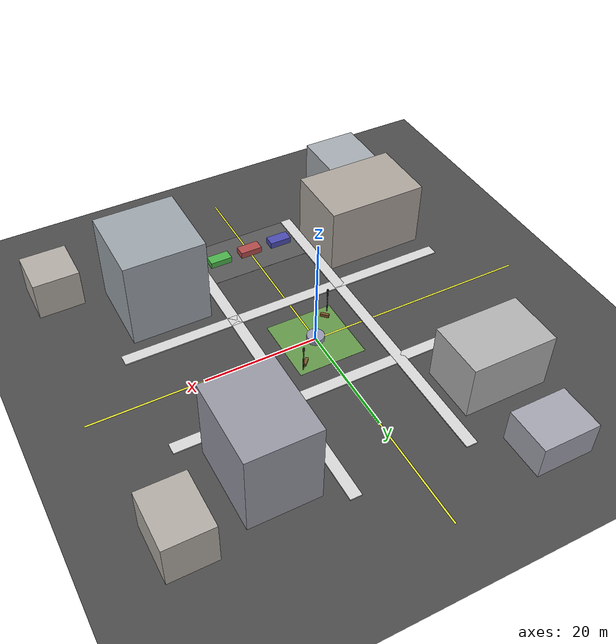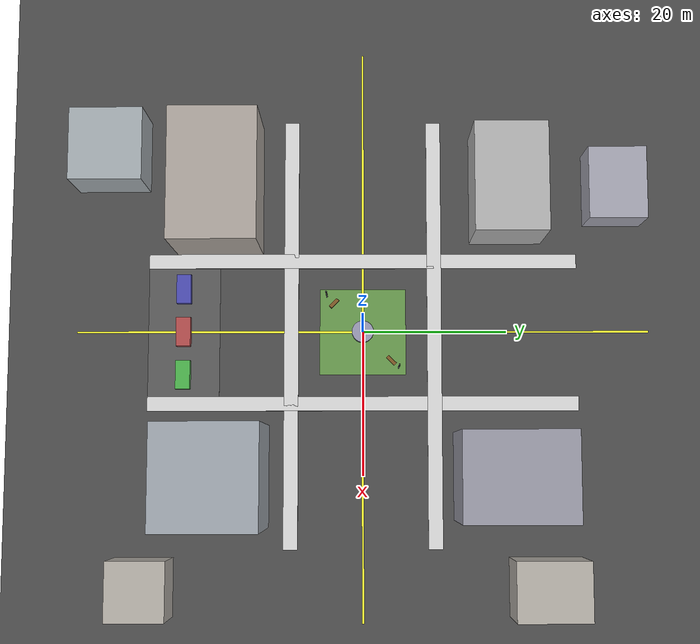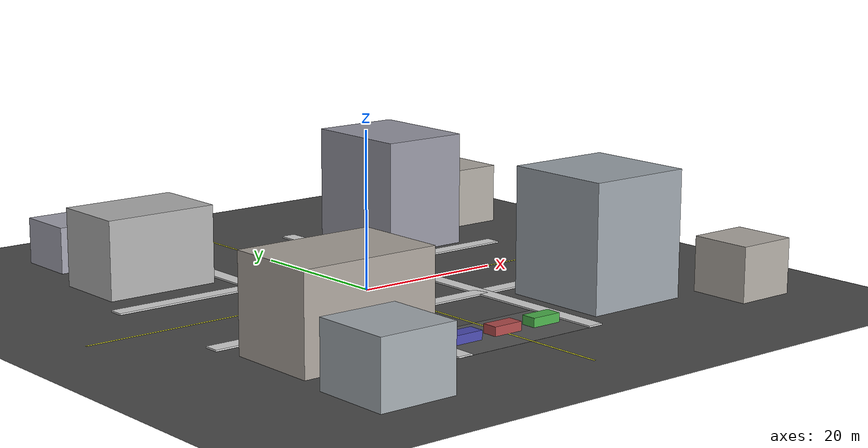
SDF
<?xml version="1.0"?>
<sdf version="1.8">
  <world name="leo_urban">

    <!-- ── Physics ─────────────────────────────────────────────────── -->
    <physics name="1ms" type="ignored">
      <max_step_size>0.001</max_step_size>
      <real_time_factor>1.0</real_time_factor>
    </physics>

    <!-- ── Plugins ──────────────────────────────────────────────────── -->
    <plugin filename="ignition-gazebo-physics-system"
            name="ignition::gazebo::systems::Physics"/>
    <plugin filename="ignition-gazebo-sensors-system"
            name="ignition::gazebo::systems::Sensors">
      <render_engine>ogre2</render_engine>
    </plugin>
    <plugin filename="ignition-gazebo-scene-broadcaster-system"
            name="ignition::gazebo::systems::SceneBroadcaster"/>
    <plugin filename="ignition-gazebo-user-commands-system"
            name="ignition::gazebo::systems::UserCommands"/>
    <plugin filename="gz-sim-imu-system"
            name="gz::sim::systems::Imu"/>
    <plugin filename="ignition-gazebo-navsat-system"
            name="ignition::gazebo::systems::NavSat"/>

    <!-- ── GPS datum: Ankara ─────────────────────────────────────────── -->
    <spherical_coordinates>
      <surface_model>EARTH_WGS84</surface_model>
      <world_frame_orientation>ENU</world_frame_orientation>
      <latitude_deg>39.925018</latitude_deg>
      <longitude_deg>32.836956</longitude_deg>
      <elevation>890</elevation>
      <heading_deg>0</heading_deg>
    </spherical_coordinates>

    <!-- ── Lighting ─────────────────────────────────────────────────── -->
    <light name="sun" type="directional">
      <cast_shadows>true</cast_shadows>
      <pose>0 0 15 0 0 0</pose>
      <diffuse>0.9 0.9 0.9 1</diffuse>
      <specular>0.3 0.3 0.3 1</specular>
      <attenuation>
        <range>1000</range>
        <constant>0.9</constant>
        <linear>0.01</linear>
        <quadratic>0.001</quadratic>
      </attenuation>
      <direction>-0.5 0.1 -0.9</direction>
    </light>

    <!-- ── Ground plane (asphalt) ───────────────────────────────────── -->
    <model name="ground_plane">
      <static>true</static>
      <link name="link">
        <collision name="collision">
          <geometry>
            <plane>
              <normal>0 0 1</normal>
              <size>200 200</size>
            </plane>
          </geometry>
          <surface>
            <friction>
              <ode><mu>0.8</mu><mu2>0.8</mu2></ode>
            </friction>
          </surface>
        </collision>
        <visual name="visual">
          <geometry>
            <plane>
              <normal>0 0 1</normal>
              <size>200 200</size>
            </plane>
          </geometry>
          <material>
            <!-- Dark asphalt -->
            <ambient>0.2 0.2 0.2 1</ambient>
            <diffuse>0.3 0.3 0.3 1</diffuse>
            <specular>0.1 0.1 0.1 1</specular>
          </material>
        </visual>
      </link>
    </model>

    <!-- ════════════════════════════════════════════════════════════════
         BUILDINGS — City blocks
         ════════════════════════════════════════════════════════════════ -->

    <!-- Block A — NW corner -->
    <model name="building_a1">
      <static>true</static>
      <pose>-20 20 5 0 0 0</pose>
      <link name="link">
        <collision name="c">
          <geometry><box><size>15 10 10</size></box></geometry>
        </collision>
        <visual name="v">
          <geometry><box><size>15 10 10</size></box></geometry>
          <material><ambient>0.6 0.6 0.6 1</ambient><diffuse>0.7 0.7 0.7 1</diffuse></material>
        </visual>
      </link>
    </model>

    <model name="building_a2">
      <static>true</static>
      <pose>-20 35 3 0 0 0</pose>
      <link name="link">
        <collision name="c">
          <geometry><box><size>10 8 6</size></box></geometry>
        </collision>
        <visual name="v">
          <geometry><box><size>10 8 6</size></box></geometry>
          <material><ambient>0.55 0.55 0.6 1</ambient><diffuse>0.65 0.65 0.7 1</diffuse></material>
        </visual>
      </link>
    </model>

    <!-- Block B — NE corner -->
    <model name="building_b1">
      <static>true</static>
      <pose>20 20 7.5 0 0 0</pose>
      <link name="link">
        <collision name="c">
          <geometry><box><size>12 15 15</size></box></geometry>
        </collision>
        <visual name="v">
          <geometry><box><size>12 15 15</size></box></geometry>
          <material><ambient>0.5 0.5 0.55 1</ambient><diffuse>0.6 0.6 0.65 1</diffuse></material>
        </visual>
      </link>
    </model>

    <model name="building_b2">
      <static>true</static>
      <pose>35 25 4 0 0 0</pose>
      <link name="link">
        <collision name="c">
          <geometry><box><size>8 10 8</size></box></geometry>
        </collision>
        <visual name="v">
          <geometry><box><size>8 10 8</size></box></geometry>
          <material><ambient>0.6 0.58 0.55 1</ambient><diffuse>0.7 0.68 0.65 1</diffuse></material>
        </visual>
      </link>
    </model>

    <!-- Block C — SW corner -->
    <model name="building_c1">
      <static>true</static>
      <pose>-20 -20 6 0 0 0</pose>
      <link name="link">
        <collision name="c">
          <geometry><box><size>18 12 12</size></box></geometry>
        </collision>
        <visual name="v">
          <geometry><box><size>18 12 12</size></box></geometry>
          <material><ambient>0.58 0.55 0.52 1</ambient><diffuse>0.68 0.65 0.62 1</diffuse></material>
        </visual>
      </link>
    </model>

    <model name="building_c2">
      <static>true</static>
      <pose>-25 -35 4 0 0 0</pose>
      <link name="link">
        <collision name="c">
          <geometry><box><size>10 10 8</size></box></geometry>
        </collision>
        <visual name="v">
          <geometry><box><size>10 10 8</size></box></geometry>
          <material><ambient>0.55 0.58 0.6 1</ambient><diffuse>0.65 0.68 0.7 1</diffuse></material>
        </visual>
      </link>
    </model>

    <!-- Block D — SE corner -->
    <model name="building_d1">
      <static>true</static>
      <pose>20 -20 8 0 0 0</pose>
      <link name="link">
        <collision name="c">
          <geometry><box><size>14 14 16</size></box></geometry>
        </collision>
        <visual name="v">
          <geometry><box><size>14 14 16</size></box></geometry>
          <material><ambient>0.52 0.55 0.58 1</ambient><diffuse>0.62 0.65 0.68 1</diffuse></material>
        </visual>
      </link>
    </model>

    <model name="building_d2">
      <static>true</static>
      <pose>35 -30 3.5 0 0 0</pose>
      <link name="link">
        <collision name="c">
          <geometry><box><size>8 8 7</size></box></geometry>
        </collision>
        <visual name="v">
          <geometry><box><size>8 8 7</size></box></geometry>
          <material><ambient>0.6 0.58 0.55 1</ambient><diffuse>0.7 0.68 0.65 1</diffuse></material>
        </visual>
      </link>
    </model>

    <!-- ════════════════════════════════════════════════════════════════
         ROAD MARKINGS — Lane dividers (visual only)
         ════════════════════════════════════════════════════════════════ -->

    <!-- Main road N-S (x=0) -->
    <model name="road_ns_center">
      <static>true</static>
      <pose>0 0 0.02 0 0 0</pose>
      <link name="link">
        <visual name="v">
          <geometry><plane><normal>0 0 1</normal><size>0.3 80</size></plane></geometry>
          <material><ambient>0.9 0.9 0.1 1</ambient><diffuse>1.0 1.0 0.2 1</diffuse></material>
        </visual>
      </link>
    </model>

    <!-- Main road E-W (y=0) -->
    <model name="road_ew_center">
      <static>true</static>
      <pose>0 0 0.02 0 0 0</pose>
      <link name="link">
        <visual name="v">
          <geometry><plane><normal>0 0 1</normal><size>80 0.3</size></plane></geometry>
          <material><ambient>0.9 0.9 0.1 1</ambient><diffuse>1.0 1.0 0.2 1</diffuse></material>
        </visual>
      </link>
    </model>

    <!-- ════════════════════════════════════════════════════════════════
         SIDEWALKS — Raised platforms along roads
         ════════════════════════════════════════════════════════════════ -->

    <!-- North sidewalk (along y=10) -->
    <model name="sidewalk_north">
      <static>true</static>
      <pose>0 10 0.1 0 0 0</pose>
      <link name="link">
        <collision name="c">
          <geometry><box><size>60 2 0.2</size></box></geometry>
          <surface><friction><ode><mu>0.9</mu></ode></friction></surface>
        </collision>
        <visual name="v">
          <geometry><box><size>60 2 0.2</size></box></geometry>
          <material><ambient>0.8 0.8 0.8 1</ambient><diffuse>0.85 0.85 0.85 1</diffuse></material>
        </visual>
      </link>
    </model>

    <!-- South sidewalk (along y=-10) -->
    <model name="sidewalk_south">
      <static>true</static>
      <pose>0 -10 0.1 0 0 0</pose>
      <link name="link">
        <collision name="c">
          <geometry><box><size>60 2 0.2</size></box></geometry>
          <surface><friction><ode><mu>0.9</mu></ode></friction></surface>
        </collision>
        <visual name="v">
          <geometry><box><size>60 2 0.2</size></box></geometry>
          <material><ambient>0.8 0.8 0.8 1</ambient><diffuse>0.85 0.85 0.85 1</diffuse></material>
        </visual>
      </link>
    </model>

    <!-- East sidewalk (along x=10) -->
    <model name="sidewalk_east">
      <static>true</static>
      <pose>10 0 0.1 0 0 0</pose>
      <link name="link">
        <collision name="c">
          <geometry><box><size>2 60 0.2</size></box></geometry>
          <surface><friction><ode><mu>0.9</mu></ode></friction></surface>
        </collision>
        <visual name="v">
          <geometry><box><size>2 60 0.2</size></box></geometry>
          <material><ambient>0.8 0.8 0.8 1</ambient><diffuse>0.85 0.85 0.85 1</diffuse></material>
        </visual>
      </link>
    </model>

    <!-- West sidewalk (along x=-10) -->
    <model name="sidewalk_west">
      <static>true</static>
      <pose>-10 0 0.1 0 0 0</pose>
      <link name="link">
        <collision name="c">
          <geometry><box><size>2 60 0.2</size></box></geometry>
          <surface><friction><ode><mu>0.9</mu></ode></friction></surface>
        </collision>
        <visual name="v">
          <geometry><box><size>2 60 0.2</size></box></geometry>
          <material><ambient>0.8 0.8 0.8 1</ambient><diffuse>0.85 0.85 0.85 1</diffuse></material>
        </visual>
      </link>
    </model>

    <!-- ════════════════════════════════════════════════════════════════
         PARK AREA — Central green space
         ════════════════════════════════════════════════════════════════ -->

    <model name="park_grass">
      <static>true</static>
      <pose>0 0 0.01 0 0 0</pose>
      <link name="link">
        <collision name="c">
          <geometry><plane><normal>0 0 1</normal><size>12 12</size></plane></geometry>
          <surface><friction><ode><mu>0.6</mu></ode></friction></surface>
        </collision>
        <visual name="v">
          <geometry><plane><normal>0 0 1</normal><size>12 12</size></plane></geometry>
          <material><ambient>0.3 0.5 0.2 1</ambient><diffuse>0.4 0.6 0.3 1</diffuse></material>
        </visual>
      </link>
    </model>

    <!-- Park fountain -->
    <model name="fountain">
      <static>true</static>
      <pose>0 0 0.5 0 0 0</pose>
      <link name="link">
        <collision name="c">
          <geometry><cylinder><radius>1.5</radius><length>1.0</length></cylinder></geometry>
        </collision>
        <visual name="v">
          <geometry><cylinder><radius>1.5</radius><length>1.0</length></cylinder></geometry>
          <material><ambient>0.5 0.5 0.6 1</ambient><diffuse>0.6 0.6 0.7 1</diffuse></material>
        </visual>
      </link>
    </model>

    <!-- Park benches -->
    <model name="bench_01">
      <static>true</static>
      <pose>4 4 0.3 0 0 0.785</pose>
      <link name="link">
        <collision name="c">
          <geometry><box><size>1.5 0.5 0.6</size></box></geometry>
        </collision>
        <visual name="v">
          <geometry><box><size>1.5 0.5 0.6</size></box></geometry>
          <material><ambient>0.4 0.25 0.1 1</ambient><diffuse>0.5 0.35 0.15 1</diffuse></material>
        </visual>
      </link>
    </model>

    <model name="bench_02">
      <static>true</static>
      <pose>-4 -4 0.3 0 0 -0.785</pose>
      <link name="link">
        <collision name="c">
          <geometry><box><size>1.5 0.5 0.6</size></box></geometry>
        </collision>
        <visual name="v">
          <geometry><box><size>1.5 0.5 0.6</size></box></geometry>
          <material><ambient>0.4 0.25 0.1 1</ambient><diffuse>0.5 0.35 0.15 1</diffuse></material>
        </visual>
      </link>
    </model>

    <!-- ════════════════════════════════════════════════════════════════
         PARKING LOT — South area
         ════════════════════════════════════════════════════════════════ -->

    <model name="parking_lot">
      <static>true</static>
      <pose>0 -25 0.01 0 0 0</pose>
      <link name="link">
        <collision name="c">
          <geometry><plane><normal>0 0 1</normal><size>20 10</size></plane></geometry>
          <surface><friction><ode><mu>0.85</mu></ode></friction></surface>
        </collision>
        <visual name="v">
          <geometry><plane><normal>0 0 1</normal><size>20 10</size></plane></geometry>
          <material><ambient>0.25 0.25 0.25 1</ambient><diffuse>0.35 0.35 0.35 1</diffuse></material>
        </visual>
      </link>
    </model>

    <!-- Parked cars -->
    <model name="car_01">
      <static>true</static>
      <pose>-6 -25 0.4 0 0 0</pose>
      <link name="link">
        <collision name="c">
          <geometry><box><size>4 2 1.5</size></box></geometry>
        </collision>
        <visual name="v">
          <geometry><box><size>4 2 1.5</size></box></geometry>
          <material><ambient>0.2 0.2 0.6 1</ambient><diffuse>0.3 0.3 0.7 1</diffuse></material>
        </visual>
      </link>
    </model>

    <model name="car_02">
      <static>true</static>
      <pose>0 -25 0.4 0 0 0</pose>
      <link name="link">
        <collision name="c">
          <geometry><box><size>4 2 1.5</size></box></geometry>
        </collision>
        <visual name="v">
          <geometry><box><size>4 2 1.5</size></box></geometry>
          <material><ambient>0.6 0.2 0.2 1</ambient><diffuse>0.7 0.3 0.3 1</diffuse></material>
        </visual>
      </link>
    </model>

    <model name="car_03">
      <static>true</static>
      <pose>6 -25 0.4 0 0 0</pose>
      <link name="link">
        <collision name="c">
          <geometry><box><size>4 2 1.5</size></box></geometry>
        </collision>
        <visual name="v">
          <geometry><box><size>4 2 1.5</size></box></geometry>
          <material><ambient>0.2 0.6 0.2 1</ambient><diffuse>0.3 0.7 0.3 1</diffuse></material>
        </visual>
      </link>
    </model>

    <!-- ════════════════════════════════════════════════════════════════
         TRAFFIC ELEMENTS — Visual landmarks
         ════════════════════════════════════════════════════════════════ -->

    <!-- Traffic light at intersection -->
    <model name="traffic_light_01">
      <static>true</static>
      <pose>5 5 2.5 0 0 0</pose>
      <link name="link">
        <collision name="c">
          <geometry><cylinder><radius>0.1</radius><length>5.0</length></cylinder></geometry>
        </collision>
        <visual name="v">
          <geometry><cylinder><radius>0.1</radius><length>5.0</length></cylinder></geometry>
          <material><ambient>0.3 0.3 0.3 1</ambient><diffuse>0.4 0.4 0.4 1</diffuse></material>
        </visual>
      </link>
      <link name="head">
        <pose>0 0 2.0 0 0 0</pose>
        <collision name="c">
          <geometry><box><size>0.3 0.1 0.8</size></box></geometry>
        </collision>
        <visual name="v">
          <geometry><box><size>0.3 0.1 0.8</size></box></geometry>
          <material><ambient>0.1 0.1 0.1 1</ambient><diffuse>0.2 0.2 0.2 1</diffuse></material>
        </visual>
      </link>
    </model>

    <model name="traffic_light_02">
      <static>true</static>
      <pose>-5 -5 2.5 0 0 3.14</pose>
      <link name="link">
        <collision name="c">
          <geometry><cylinder><radius>0.1</radius><length>5.0</length></cylinder></geometry>
        </collision>
        <visual name="v">
          <geometry><cylinder><radius>0.1</radius><length>5.0</length></cylinder></geometry>
          <material><ambient>0.3 0.3 0.3 1</ambient><diffuse>0.4 0.4 0.4 1</diffuse></material>
        </visual>
      </link>
      <link name="head">
        <pose>0 0 2.0 0 0 0</pose>
        <collision name="c">
          <geometry><box><size>0.3 0.1 0.8</size></box></geometry>
        </collision>
        <visual name="v">
          <geometry><box><size>0.3 0.1 0.8</size></box></geometry>
          <material><ambient>0.1 0.1 0.1 1</ambient><diffuse>0.2 0.2 0.2 1</diffuse></material>
        </visual>
      </link>
    </model>

  </world>
</sdf>
